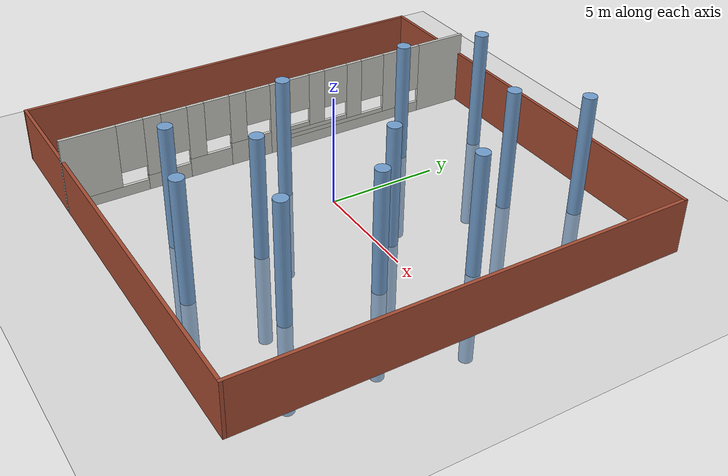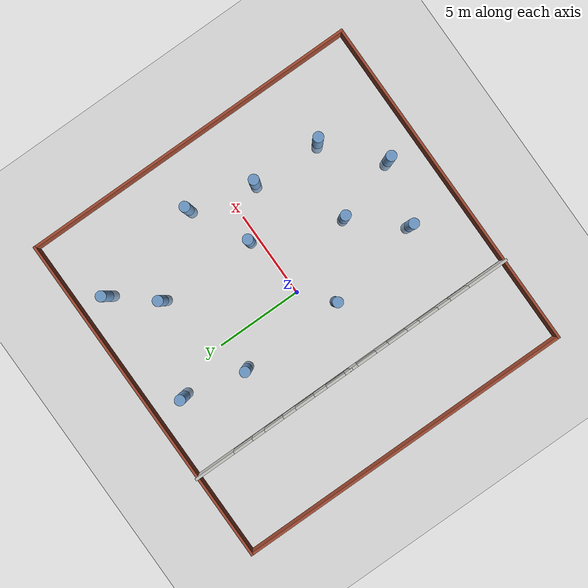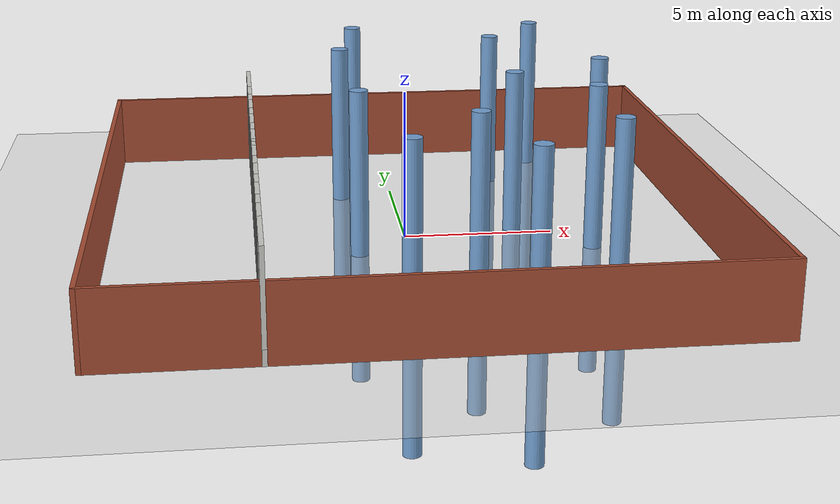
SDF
<sdf version="1.6">
 <world name="ego_swarm_8">
  <plugin name="gz::sim::systems::Physics" filename="gz-sim-physics-system"/>
  <plugin name="gz::sim::systems::UserCommands" filename="gz-sim-user-commands-system"/>
  <plugin name="gz::sim::systems::SceneBroadcaster" filename="gz-sim-scene-broadcaster-system"/>
  <plugin name="gz::sim::systems::Contact" filename="gz-sim-contact-system"/>
  <plugin name="gz::sim::systems::Imu" filename="gz-sim-imu-system"/>
  <plugin name="gz::sim::systems::AirPressure" filename="gz-sim-air-pressure-system"/>
  <plugin name="gz::sim::systems::ApplyLinkWrench" filename="gz-sim-apply-link-wrench-system"/>
  <plugin name="gz::sim::systems::NavSat" filename="gz-sim-navsat-system"/>
  <plugin name="gz::sim::systems::Sensors" filename="gz-sim-sensors-system">
   <render_engine>ogre2</render_engine>
  </plugin>
  <light name="sun" type="directional">
   <pose>0 0 10 0 -0 0</pose>
   <diffuse>0.8 0.8 0.8 1</diffuse>
   <specular>0.2 0.2 0.2 1</specular>
   <attenuation>
    <range>1000</range>
    <constant>0.9</constant>
    <linear>0.01</linear>
    <quadratic>0.001</quadratic>
   </attenuation>
   <direction>-0.5 0.1 -0.9</direction>
  </light>
  <model name="ground_plane">
   <static>1</static>
   <link name="link">
    <collision name="collision">
     <geometry><plane><normal>0 0 1</normal><size>100 100</size></plane></geometry>
     <surface><friction><ode><mu>100</mu><mu2>50</mu2></ode></friction></surface>
    </collision>
    <visual name="visual">
     <cast_shadows>0</cast_shadows>
     <geometry><plane><normal>0 0 1</normal><size>100 100</size></plane></geometry>
     <material>
      <script><uri>file://media/materials/scripts/gazebo.material</uri><name>Gazebo/Grey</name></script>
     </material>
    </visual>
   </link>
  </model>
  <gravity>0 0 -9.8</gravity>
  <magnetic_field>6e-06 2.3e-05 -4.2e-05</magnetic_field>
  <atmosphere type="adiabatic"/>
  <physics name="default_physics" default="0" type="ode">
   <max_step_size>0.004</max_step_size>
   <real_time_factor>1</real_time_factor>
   <real_time_update_rate>250</real_time_update_rate>
  </physics>
  <scene><ambient>0.4 0.4 0.4 1</ambient><background>0.7 0.7 0.7 1</background><shadows>1</shadows></scene>
  <spherical_coordinates>
   <surface_model>EARTH_WGS84</surface_model>
   <latitude_deg>0</latitude_deg>
   <longitude_deg>0</longitude_deg>
   <elevation>0</elevation>
   <heading_deg>0</heading_deg>
  </spherical_coordinates>
  <model name="Wall_left">
   <pose>-5 5 0 0 -0 0</pose>
   <link name="Wall_0">
    <pose>0 -0 0 0 -0 -1.5708</pose>
    <visual name="Wall_0_Visual_0">
     <pose>-3.8375 0 1.75 0 -0 0</pose>
     <geometry><box><size>2.475 0.15 3.5</size></box></geometry>
     <material>
      <script><uri>file://media/materials/scripts/gazebo.material</uri><name>Gazebo/CeilingTiled</name></script>
      <ambient>0.760784 0.662745 0.627451 1</ambient>
     </material>
     <meta><layer>0</layer></meta>
    </visual>
    <collision name="Wall_0_Collision_0">
     <geometry><box><size>2.475 0.15 3.5</size></box></geometry>
     <pose>-3.8375 0 1.75 0 -0 0</pose>
    </collision>
    <visual name="Wall_0_Visual_1">
     <pose>1.2375 0 0.25 0 -0 0</pose>
     <geometry><box><size>7.675 0.15 0.5</size></box></geometry>
     <material>
      <script><uri>file://media/materials/scripts/gazebo.material</uri><name>Gazebo/CeilingTiled</name></script>
      <ambient>0.760784 0.662745 0.627451 1</ambient>
     </material>
     <meta><layer>0</layer></meta>
    </visual>
    <collision name="Wall_0_Collision_1">
     <geometry><box><size>7.675 0.15 0.5</size></box></geometry>
     <pose>1.2375 0 0.25 0 -0 0</pose>
    </collision>
    <visual name="Wall_0_Visual_2">
     <pose>-1 0 2 0 -0 0</pose>
     <geometry><box><size>0.8 0.15 3</size></box></geometry>
     <material>
      <script><uri>file://media/materials/scripts/gazebo.material</uri><name>Gazebo/CeilingTiled</name></script>
      <ambient>0.760784 0.662745 0.627451 1</ambient>
     </material>
     <meta><layer>0</layer></meta>
    </visual>
    <collision name="Wall_0_Collision_2">
     <geometry><box><size>0.8 0.15 3</size></box></geometry>
     <pose>-1 0 2 0 -0 0</pose>
    </collision>
    <visual name="Wall_0_Visual_3">
     <pose>2.2375 0 0.6 0 -0 0</pose>
     <geometry><box><size>5.675 0.15 0.2</size></box></geometry>
     <material>
      <script><uri>file://media/materials/scripts/gazebo.material</uri><name>Gazebo/CeilingTiled</name></script>
      <ambient>0.760784 0.662745 0.627451 1</ambient>
     </material>
     <meta><layer>0</layer></meta>
    </visual>
    <collision name="Wall_0_Collision_3">
     <geometry><box><size>5.675 0.15 0.2</size></box></geometry>
     <pose>2.2375 0 0.6 0 -0 0</pose>
    </collision>
    <visual name="Wall_0_Visual_4">
     <pose>1 0 2.1 0 -0 0</pose>
     <geometry><box><size>0.8 0.15 2.8</size></box></geometry>
     <material>
      <script><uri>file://media/materials/scripts/gazebo.material</uri><name>Gazebo/CeilingTiled</name></script>
      <ambient>0.760784 0.662745 0.627451 1</ambient>
     </material>
     <meta><layer>0</layer></meta>
    </visual>
    <collision name="Wall_0_Collision_4">
     <geometry><box><size>0.8 0.15 2.8</size></box></geometry>
     <pose>1 0 2.1 0 -0 0</pose>
    </collision>
    <visual name="Wall_0_Visual_5">
     <pose>3.2375 0 0.8 0 -0 0</pose>
     <geometry><box><size>3.675 0.15 0.2</size></box></geometry>
     <material>
      <script><uri>file://media/materials/scripts/gazebo.material</uri><name>Gazebo/CeilingTiled</name></script>
      <ambient>0.760784 0.662745 0.627451 1</ambient>
     </material>
     <meta><layer>0</layer></meta>
    </visual>
    <collision name="Wall_0_Collision_5">
     <geometry><box><size>3.675 0.15 0.2</size></box></geometry>
     <pose>3.2375 0 0.8 0 -0 0</pose>
    </collision>
    <visual name="Wall_0_Visual_6">
     <pose>3 0 2.2 0 -0 0</pose>
     <geometry><box><size>0.8 0.15 2.6</size></box></geometry>
     <material>
      <script><uri>file://media/materials/scripts/gazebo.material</uri><name>Gazebo/CeilingTiled</name></script>
      <ambient>0.760784 0.662745 0.627451 1</ambient>
     </material>
     <meta><layer>0</layer></meta>
    </visual>
    <collision name="Wall_0_Collision_6">
     <geometry><box><size>0.8 0.15 2.6</size></box></geometry>
     <pose>3 0 2.2 0 -0 0</pose>
    </collision>
    <visual name="Wall_0_Visual_7">
     <pose>4.2375 0 1 0 -0 0</pose>
     <geometry><box><size>1.675 0.15 0.2</size></box></geometry>
     <material>
      <script><uri>file://media/materials/scripts/gazebo.material</uri><name>Gazebo/CeilingTiled</name></script>
      <ambient>0.760784 0.662745 0.627451 1</ambient>
     </material>
     <meta><layer>0</layer></meta>
    </visual>
    <collision name="Wall_0_Collision_7">
     <geometry><box><size>1.675 0.15 0.2</size></box></geometry>
     <pose>4.2375 0 1 0 -0 0</pose>
    </collision>
    <visual name="Wall_0_Visual_8">
     <pose>4.8375 0 2.3 0 -0 0</pose>
     <geometry><box><size>0.475 0.15 2.4</size></box></geometry>
     <material>
      <script><uri>file://media/materials/scripts/gazebo.material</uri><name>Gazebo/CeilingTiled</name></script>
      <ambient>0.760784 0.662745 0.627451 1</ambient>
     </material>
     <meta><layer>0</layer></meta>
    </visual>
    <collision name="Wall_0_Collision_8">
     <geometry><box><size>0.475 0.15 2.4</size></box></geometry>
     <pose>4.8375 0 2.3 0 -0 0</pose>
    </collision>
    <visual name="Wall_0_Visual_9">
     <pose>-2 0 2.35 0 -0 0</pose>
     <geometry><box><size>1.2 0.15 2.3</size></box></geometry>
     <material>
      <script><uri>file://media/materials/scripts/gazebo.material</uri><name>Gazebo/CeilingTiled</name></script>
      <ambient>0.760784 0.662745 0.627451 1</ambient>
     </material>
     <meta><layer>0</layer></meta>
    </visual>
    <collision name="Wall_0_Collision_9">
     <geometry><box><size>1.2 0.15 2.3</size></box></geometry>
     <pose>-2 0 2.35 0 -0 0</pose>
    </collision>
    <visual name="Wall_0_Visual_10">
     <pose>0 0 2.45 0 -0 0</pose>
     <geometry><box><size>1.2 0.15 2.1</size></box></geometry>
     <material>
      <script><uri>file://media/materials/scripts/gazebo.material</uri><name>Gazebo/CeilingTiled</name></script>
      <ambient>0.760784 0.662745 0.627451 1</ambient>
     </material>
     <meta><layer>0</layer></meta>
    </visual>
    <collision name="Wall_0_Collision_10">
     <geometry><box><size>1.2 0.15 2.1</size></box></geometry>
     <pose>0 0 2.45 0 -0 0</pose>
    </collision>
    <visual name="Wall_0_Visual_11">
     <pose>2 0 2.55 0 -0 0</pose>
     <geometry><box><size>1.2 0.15 1.9</size></box></geometry>
     <material>
      <script><uri>file://media/materials/scripts/gazebo.material</uri><name>Gazebo/CeilingTiled</name></script>
      <ambient>0.760784 0.662745 0.627451 1</ambient>
     </material>
     <meta><layer>0</layer></meta>
    </visual>
    <collision name="Wall_0_Collision_11">
     <geometry><box><size>1.2 0.15 1.9</size></box></geometry>
     <pose>2 0 2.55 0 -0 0</pose>
    </collision>
    <visual name="Wall_0_Visual_12">
     <pose>4 0 2.65 0 -0 0</pose>
     <geometry><box><size>1.2 0.15 1.7</size></box></geometry>
     <material>
      <script><uri>file://media/materials/scripts/gazebo.material</uri><name>Gazebo/CeilingTiled</name></script>
      <ambient>0.760784 0.662745 0.627451 1</ambient>
     </material>
     <meta><layer>0</layer></meta>
    </visual>
    <collision name="Wall_0_Collision_12">
     <geometry><box><size>1.2 0.15 1.7</size></box></geometry>
     <pose>4 0 2.65 0 -0 0</pose>
    </collision>
   </link>
   <static>1</static>
  </model>
  <model name="Wall_right">
   <pose>-5 -5 0 0 -0 0</pose>
   <link name="Wall_2">
    <pose>0 0 0 0 -0 -1.5708</pose>
    <visual name="Wall_2_Visual_0">
     <pose>-4.8375 0 1.75 0 -0 0</pose>
     <geometry><box><size>0.475 0.15 3.5</size></box></geometry>
     <material>
      <script><uri>file://media/materials/scripts/gazebo.material</uri><name>Gazebo/CeilingTiled</name></script>
      <ambient>0.760784 0.662745 0.627451 1</ambient>
     </material>
     <meta><layer>0</layer></meta>
    </visual>
    <collision name="Wall_2_Collision_0">
     <geometry><box><size>0.475 0.15 3.5</size></box></geometry>
     <pose>-4.8375 0 1.75 0 -0 0</pose>
    </collision>
    <visual name="Wall_2_Visual_1">
     <pose>-3.6 0 0.55 0 -0 0</pose>
     <geometry><box><size>2 0.15 1.1</size></box></geometry>
     <material>
      <script><uri>file://media/materials/scripts/gazebo.material</uri><name>Gazebo/CeilingTiled</name></script>
      <ambient>0.760784 0.662745 0.627451 1</ambient>
     </material>
     <meta><layer>0</layer></meta>
    </visual>
    <collision name="Wall_2_Collision_1">
     <geometry><box><size>2 0.15 1.1</size></box></geometry>
     <pose>-3.6 0 0.55 0 -0 0</pose>
    </collision>
    <visual name="Wall_2_Visual_2">
     <pose>-1.6 0 0.45 0 -0 0</pose>
     <geometry><box><size>2 0.15 0.9</size></box></geometry>
     <material>
      <script><uri>file://media/materials/scripts/gazebo.material</uri><name>Gazebo/CeilingTiled</name></script>
      <ambient>0.760784 0.662745 0.627451 1</ambient>
     </material>
     <meta><layer>0</layer></meta>
    </visual>
    <collision name="Wall_2_Collision_2">
     <geometry><box><size>2 0.15 0.9</size></box></geometry>
     <pose>-1.6 0 0.45 0 -0 0</pose>
    </collision>
    <visual name="Wall_2_Visual_3">
     <pose>0.4 0 0.35 0 -0 0</pose>
     <geometry><box><size>2 0.15 0.7</size></box></geometry>
     <material>
      <script><uri>file://media/materials/scripts/gazebo.material</uri><name>Gazebo/CeilingTiled</name></script>
      <ambient>0.760784 0.662745 0.627451 1</ambient>
     </material>
     <meta><layer>0</layer></meta>
    </visual>
    <collision name="Wall_2_Collision_3">
     <geometry><box><size>2 0.15 0.7</size></box></geometry>
     <pose>0.4 0 0.35 0 -0 0</pose>
    </collision>
    <visual name="Wall_2_Visual_4">
     <pose>3.2375 0 0.25 0 -0 0</pose>
     <geometry><box><size>3.675 0.15 0.5</size></box></geometry>
     <material>
      <script><uri>file://media/materials/scripts/gazebo.material</uri><name>Gazebo/CeilingTiled</name></script>
      <ambient>0.760784 0.662745 0.627451 1</ambient>
     </material>
     <meta><layer>0</layer></meta>
    </visual>
    <collision name="Wall_2_Collision_4">
     <geometry><box><size>3.675 0.15 0.5</size></box></geometry>
     <pose>3.2375 0 0.25 0 -0 0</pose>
    </collision>
    <visual name="Wall_2_Visual_5">
     <pose>3.8375 0 2 0 -0 0</pose>
     <geometry><box><size>2.475 0.15 3</size></box></geometry>
     <material>
      <script><uri>file://media/materials/scripts/gazebo.material</uri><name>Gazebo/CeilingTiled</name></script>
      <ambient>0.760784 0.662745 0.627451 1</ambient>
     </material>
     <meta><layer>0</layer></meta>
    </visual>
    <collision name="Wall_2_Collision_5">
     <geometry><box><size>2.475 0.15 3</size></box></geometry>
     <pose>3.8375 0 2 0 -0 0</pose>
    </collision>
    <visual name="Wall_2_Visual_6">
     <pose>1 0 2.1 0 -0 0</pose>
     <geometry><box><size>0.8 0.15 2.8</size></box></geometry>
     <material>
      <script><uri>file://media/materials/scripts/gazebo.material</uri><name>Gazebo/CeilingTiled</name></script>
      <ambient>0.760784 0.662745 0.627451 1</ambient>
     </material>
     <meta><layer>0</layer></meta>
    </visual>
    <collision name="Wall_2_Collision_6">
     <geometry><box><size>0.8 0.15 2.8</size></box></geometry>
     <pose>1 0 2.1 0 -0 0</pose>
    </collision>
    <visual name="Wall_2_Visual_7">
     <pose>-1 0 2.2 0 -0 0</pose>
     <geometry><box><size>0.8 0.15 2.6</size></box></geometry>
     <material>
      <script><uri>file://media/materials/scripts/gazebo.material</uri><name>Gazebo/CeilingTiled</name></script>
      <ambient>0.760784 0.662745 0.627451 1</ambient>
     </material>
     <meta><layer>0</layer></meta>
    </visual>
    <collision name="Wall_2_Collision_7">
     <geometry><box><size>0.8 0.15 2.6</size></box></geometry>
     <pose>-1 0 2.2 0 -0 0</pose>
    </collision>
    <visual name="Wall_2_Visual_8">
     <pose>-3 0 2.3 0 -0 0</pose>
     <geometry><box><size>0.8 0.15 2.4</size></box></geometry>
     <material>
      <script><uri>file://media/materials/scripts/gazebo.material</uri><name>Gazebo/CeilingTiled</name></script>
      <ambient>0.760784 0.662745 0.627451 1</ambient>
     </material>
     <meta><layer>0</layer></meta>
    </visual>
    <collision name="Wall_2_Collision_8">
     <geometry><box><size>0.8 0.15 2.4</size></box></geometry>
     <pose>-3 0 2.3 0 -0 0</pose>
    </collision>
    <visual name="Wall_2_Visual_9">
     <pose>2 0 2.35 0 -0 0</pose>
     <geometry><box><size>1.2 0.15 2.3</size></box></geometry>
     <material>
      <script><uri>file://media/materials/scripts/gazebo.material</uri><name>Gazebo/CeilingTiled</name></script>
      <ambient>0.760784 0.662745 0.627451 1</ambient>
     </material>
     <meta><layer>0</layer></meta>
    </visual>
    <collision name="Wall_2_Collision_9">
     <geometry><box><size>1.2 0.15 2.3</size></box></geometry>
     <pose>2 0 2.35 0 -0 0</pose>
    </collision>
    <visual name="Wall_2_Visual_10">
     <pose>0 0 2.45 0 -0 0</pose>
     <geometry><box><size>1.2 0.15 2.1</size></box></geometry>
     <material>
      <script><uri>file://media/materials/scripts/gazebo.material</uri><name>Gazebo/CeilingTiled</name></script>
      <ambient>0.760784 0.662745 0.627451 1</ambient>
     </material>
     <meta><layer>0</layer></meta>
    </visual>
    <collision name="Wall_2_Collision_10">
     <geometry><box><size>1.2 0.15 2.1</size></box></geometry>
     <pose>0 0 2.45 0 -0 0</pose>
    </collision>
    <visual name="Wall_2_Visual_11">
     <pose>-2 0 2.55 0 -0 0</pose>
     <geometry><box><size>1.2 0.15 1.9</size></box></geometry>
     <material>
      <script><uri>file://media/materials/scripts/gazebo.material</uri><name>Gazebo/CeilingTiled</name></script>
      <ambient>0.760784 0.662745 0.627451 1</ambient>
     </material>
     <meta><layer>0</layer></meta>
    </visual>
    <collision name="Wall_2_Collision_11">
     <geometry><box><size>1.2 0.15 1.9</size></box></geometry>
     <pose>-2 0 2.55 0 -0 0</pose>
    </collision>
    <visual name="Wall_2_Visual_12">
     <pose>-4 0 2.65 0 -0 0</pose>
     <geometry><box><size>1.2 0.15 1.7</size></box></geometry>
     <material>
      <script><uri>file://media/materials/scripts/gazebo.material</uri><name>Gazebo/CeilingTiled</name></script>
      <ambient>0.760784 0.662745 0.627451 1</ambient>
     </material>
     <meta><layer>0</layer></meta>
    </visual>
    <collision name="Wall_2_Collision_12">
     <geometry><box><size>1.2 0.15 1.7</size></box></geometry>
     <pose>-4 0 2.65 0 -0 0</pose>
    </collision>
   </link>
   <static>1</static>
  </model>
  <model name="blank">
   <link name="Wall_0">
    <collision name="Wall_0_Collision">
     <geometry><box><size>20.15 0.15 2.5</size></box></geometry>
     <pose>0 0 1.25 0 -0 0</pose>
    </collision>
    <visual name="Wall_0_Visual">
     <pose>0 0 1.25 0 -0 0</pose>
     <geometry><box><size>20.15 0.15 2.5</size></box></geometry>
     <material>
      <script><uri>file://media/materials/scripts/gazebo.material</uri><name>Gazebo/Bricks</name></script>
      <ambient>1 1 1 1</ambient>
     </material>
     <meta><layer>0</layer></meta>
    </visual>
    <pose>0 10 0 0 -0 0</pose>
   </link>
   <link name="Wall_1">
    <collision name="Wall_1_Collision">
     <geometry><box><size>20.15 0.15 2.5</size></box></geometry>
     <pose>0 0 1.25 0 -0 0</pose>
    </collision>
    <visual name="Wall_1_Visual">
     <pose>0 0 1.25 0 -0 0</pose>
     <geometry><box><size>20.15 0.15 2.5</size></box></geometry>
     <material>
      <script><uri>file://media/materials/scripts/gazebo.material</uri><name>Gazebo/Bricks</name></script>
      <ambient>1 1 1 1</ambient>
     </material>
     <meta><layer>0</layer></meta>
    </visual>
    <pose>10 0 0 0 -0 -1.5708</pose>
   </link>
   <link name="Wall_2">
    <collision name="Wall_2_Collision">
     <geometry><box><size>20.15 0.15 2.5</size></box></geometry>
     <pose>0 0 1.25 0 -0 0</pose>
    </collision>
    <visual name="Wall_2_Visual">
     <pose>0 0 1.25 0 -0 0</pose>
     <geometry><box><size>20.15 0.15 2.5</size></box></geometry>
     <material>
      <script><uri>file://media/materials/scripts/gazebo.material</uri><name>Gazebo/Bricks</name></script>
      <ambient>1 1 1 1</ambient>
     </material>
     <meta><layer>0</layer></meta>
    </visual>
    <pose>0 -10 0 0 -0 3.14159</pose>
   </link>
   <link name="Wall_3">
    <collision name="Wall_3_Collision">
     <geometry><box><size>20.15 0.15 2.5</size></box></geometry>
     <pose>0 0 1.25 0 -0 0</pose>
    </collision>
    <visual name="Wall_3_Visual">
     <pose>0 0 1.25 0 -0 0</pose>
     <geometry><box><size>20.15 0.15 2.5</size></box></geometry>
     <material>
      <script><uri>file://media/materials/scripts/gazebo.material</uri><name>Gazebo/Bricks</name></script>
      <ambient>1 1 1 1</ambient>
     </material>
     <meta><layer>0</layer></meta>
    </visual>
    <pose>-10 0 0 0 -0 1.5708</pose>
   </link>
   <static>1</static>
  </model>
  <model name="unit_cylinder_0">
   <link name="link">
    <inertial>
     <mass>1</mass>
     <inertia><ixx>0.145833</ixx><ixy>0</ixy><ixz>0</ixz><iyy>0.145833</iyy><iyz>0</iyz><izz>0.125</izz></inertia>
    </inertial>
    <pose>0 0 3 0 -0 0</pose>
    <visual name="visual">
     <geometry><cylinder><radius>0.3</radius><length>10</length></cylinder></geometry>
     <material>
      <script><name>Gazebo/Grey</name><uri>file://media/materials/scripts/gazebo.material</uri></script>
      <shader type="pixel"><normal_map>__default__</normal_map></shader>
      <ambient>0.447 0.624 0.812 1</ambient>
      <diffuse>0.7 0.7 0.7 1</diffuse>
      <specular>0.01 0.01 0.01 1</specular>
      <emissive>0 0 0 1</emissive>
     </material>
    </visual>
    <collision name="collision">
     <geometry><cylinder><radius>0.5</radius><length>1</length></cylinder></geometry>
     <surface>
      <friction>
       <ode><mu>1</mu><mu2>1</mu2><fdir1>0 0 0</fdir1><slip1>0</slip1><slip2>0</slip2></ode>
       <torsional>
        <coefficient>1</coefficient>
        <patch_radius>0</patch_radius>
        <surface_radius>0</surface_radius>
        <use_patch_radius>1</use_patch_radius>
        <ode><slip>0</slip></ode>
       </torsional>
      </friction>
      <bounce><restitution_coefficient>0</restitution_coefficient><threshold>1e+06</threshold></bounce>
      <contact>
       <collide_without_contact>0</collide_without_contact>
       <collide_without_contact_bitmask>1</collide_without_contact_bitmask>
       <collide_bitmask>1</collide_bitmask>
       <ode>
        <soft_cfm>0</soft_cfm>
        <soft_erp>0.2</soft_erp>
        <kp>1e+13</kp>
        <kd>1</kd>
        <max_vel>0.01</max_vel>
        <min_depth>0</min_depth>
       </ode>
       <bullet>
        <split_impulse>1</split_impulse>
        <split_impulse_penetration_threshold>-0.01</split_impulse_penetration_threshold>
        <soft_cfm>0</soft_cfm>
        <soft_erp>0.2</soft_erp>
        <kp>1e+13</kp>
        <kd>1</kd>
       </bullet>
      </contact>
     </surface>
    </collision>
   </link>
   <static>0</static>
   <pose>3.81932 6.15626 -2.5 0 -0 0</pose>
  </model>
  <model name="unit_cylinder_0_0">
   <link name="link">
    <inertial>
     <mass>1</mass>
     <inertia><ixx>0.145833</ixx><ixy>0</ixy><ixz>0</ixz><iyy>0.145833</iyy><iyz>0</iyz><izz>0.125</izz></inertia>
    </inertial>
    <pose>0 0 3 0 -0 0</pose>
    <visual name="visual">
     <geometry><cylinder><radius>0.3</radius><length>10</length></cylinder></geometry>
     <material>
      <script><name>Gazebo/Grey</name><uri>file://media/materials/scripts/gazebo.material</uri></script>
      <shader type="pixel"><normal_map>__default__</normal_map></shader>
      <ambient>0.447 0.624 0.812 1</ambient>
      <diffuse>0.7 0.7 0.7 1</diffuse>
      <specular>0.01 0.01 0.01 1</specular>
      <emissive>0 0 0 1</emissive>
     </material>
    </visual>
    <collision name="collision">
     <geometry><cylinder><radius>0.5</radius><length>1</length></cylinder></geometry>
     <surface>
      <friction>
       <ode><mu>1</mu><mu2>1</mu2><fdir1>0 0 0</fdir1><slip1>0</slip1><slip2>0</slip2></ode>
       <torsional>
        <coefficient>1</coefficient>
        <patch_radius>0</patch_radius>
        <surface_radius>0</surface_radius>
        <use_patch_radius>1</use_patch_radius>
        <ode><slip>0</slip></ode>
       </torsional>
      </friction>
      <bounce><restitution_coefficient>0</restitution_coefficient><threshold>1e+06</threshold></bounce>
      <contact>
       <collide_without_contact>0</collide_without_contact>
       <collide_without_contact_bitmask>1</collide_without_contact_bitmask>
       <collide_bitmask>1</collide_bitmask>
       <ode>
        <soft_cfm>0</soft_cfm>
        <soft_erp>0.2</soft_erp>
        <kp>1e+13</kp>
        <kd>1</kd>
        <max_vel>0.01</max_vel>
        <min_depth>0</min_depth>
       </ode>
       <bullet>
        <split_impulse>1</split_impulse>
        <split_impulse_penetration_threshold>-0.01</split_impulse_penetration_threshold>
        <soft_cfm>0</soft_cfm>
        <soft_erp>0.2</soft_erp>
        <kp>1e+13</kp>
        <kd>1</kd>
       </bullet>
      </contact>
     </surface>
    </collision>
   </link>
   <static>0</static>
   <pose>-1.07012 8.20318 -2.5 0 -0 0</pose>
  </model>
  <model name="unit_cylinder_0_2">
   <link name="link">
    <inertial>
     <mass>1</mass>
     <inertia><ixx>0.145833</ixx><ixy>0</ixy><ixz>0</ixz><iyy>0.145833</iyy><iyz>0</iyz><izz>0.125</izz></inertia>
    </inertial>
    <pose>0 0 3 0 -0 0</pose>
    <visual name="visual">
     <geometry><cylinder><radius>0.3</radius><length>10</length></cylinder></geometry>
     <material>
      <script><name>Gazebo/Grey</name><uri>file://media/materials/scripts/gazebo.material</uri></script>
      <shader type="pixel"><normal_map>__default__</normal_map></shader>
      <ambient>0.447 0.624 0.812 1</ambient>
      <diffuse>0.7 0.7 0.7 1</diffuse>
      <specular>0.01 0.01 0.01 1</specular>
      <emissive>0 0 0 1</emissive>
     </material>
    </visual>
    <collision name="collision">
     <geometry><cylinder><radius>0.5</radius><length>1</length></cylinder></geometry>
     <surface>
      <friction>
       <ode><mu>1</mu><mu2>1</mu2><fdir1>0 0 0</fdir1><slip1>0</slip1><slip2>0</slip2></ode>
       <torsional>
        <coefficient>1</coefficient>
        <patch_radius>0</patch_radius>
        <surface_radius>0</surface_radius>
        <use_patch_radius>1</use_patch_radius>
        <ode><slip>0</slip></ode>
       </torsional>
      </friction>
      <bounce><restitution_coefficient>0</restitution_coefficient><threshold>1e+06</threshold></bounce>
      <contact>
       <collide_without_contact>0</collide_without_contact>
       <collide_without_contact_bitmask>1</collide_without_contact_bitmask>
       <collide_bitmask>1</collide_bitmask>
       <ode>
        <soft_cfm>0</soft_cfm>
        <soft_erp>0.2</soft_erp>
        <kp>1e+13</kp>
        <kd>1</kd>
        <max_vel>0.01</max_vel>
        <min_depth>0</min_depth>
       </ode>
       <bullet>
        <split_impulse>1</split_impulse>
        <split_impulse_penetration_threshold>-0.01</split_impulse_penetration_threshold>
        <soft_cfm>0</soft_cfm>
        <soft_erp>0.2</soft_erp>
        <kp>1e+13</kp>
        <kd>1</kd>
       </bullet>
      </contact>
     </surface>
    </collision>
   </link>
   <static>0</static>
   <pose>5.72873 8.43511 -2.5 0 -0 0</pose>
  </model>
  <model name="unit_cylinder_0_4">
   <link name="link">
    <inertial>
     <mass>1</mass>
     <inertia><ixx>0.145833</ixx><ixy>0</ixy><ixz>0</ixz><iyy>0.145833</iyy><iyz>0</iyz><izz>0.125</izz></inertia>
    </inertial>
    <pose>0 0 3 0 -0 0</pose>
    <visual name="visual">
     <geometry><cylinder><radius>0.3</radius><length>10</length></cylinder></geometry>
     <material>
      <script><name>Gazebo/Grey</name><uri>file://media/materials/scripts/gazebo.material</uri></script>
      <shader type="pixel"><normal_map>__default__</normal_map></shader>
      <ambient>0.447 0.624 0.812 1</ambient>
      <diffuse>0.7 0.7 0.7 1</diffuse>
      <specular>0.01 0.01 0.01 1</specular>
      <emissive>0 0 0 1</emissive>
     </material>
    </visual>
    <collision name="collision">
     <geometry><cylinder><radius>0.5</radius><length>1</length></cylinder></geometry>
     <surface>
      <friction>
       <ode><mu>1</mu><mu2>1</mu2><fdir1>0 0 0</fdir1><slip1>0</slip1><slip2>0</slip2></ode>
       <torsional>
        <coefficient>1</coefficient>
        <patch_radius>0</patch_radius>
        <surface_radius>0</surface_radius>
        <use_patch_radius>1</use_patch_radius>
        <ode><slip>0</slip></ode>
       </torsional>
      </friction>
      <bounce><restitution_coefficient>0</restitution_coefficient><threshold>1e+06</threshold></bounce>
      <contact>
       <collide_without_contact>0</collide_without_contact>
       <collide_without_contact_bitmask>1</collide_without_contact_bitmask>
       <collide_bitmask>1</collide_bitmask>
       <ode>
        <soft_cfm>0</soft_cfm>
        <soft_erp>0.2</soft_erp>
        <kp>1e+13</kp>
        <kd>1</kd>
        <max_vel>0.01</max_vel>
        <min_depth>0</min_depth>
       </ode>
       <bullet>
        <split_impulse>1</split_impulse>
        <split_impulse_penetration_threshold>-0.01</split_impulse_penetration_threshold>
        <soft_cfm>0</soft_cfm>
        <soft_erp>0.2</soft_erp>
        <kp>1e+13</kp>
        <kd>1</kd>
       </bullet>
      </contact>
     </surface>
    </collision>
   </link>
   <static>0</static>
   <pose>3.72627 0.485715 -2.50001 -0 -0 -0</pose>
  </model>
  <model name="unit_cylinder_0_5">
   <link name="link">
    <inertial>
     <mass>1</mass>
     <inertia><ixx>0.145833</ixx><ixy>0</ixy><ixz>0</ixz><iyy>0.145833</iyy><iyz>0</iyz><izz>0.125</izz></inertia>
    </inertial>
    <pose>0 0 3 0 -0 0</pose>
    <visual name="visual">
     <geometry><cylinder><radius>0.3</radius><length>10</length></cylinder></geometry>
     <material>
      <script><name>Gazebo/Grey</name><uri>file://media/materials/scripts/gazebo.material</uri></script>
      <shader type="pixel"><normal_map>__default__</normal_map></shader>
      <ambient>0.447 0.624 0.812 1</ambient>
      <diffuse>0.7 0.7 0.7 1</diffuse>
      <specular>0.01 0.01 0.01 1</specular>
      <emissive>0 0 0 1</emissive>
     </material>
    </visual>
    <collision name="collision">
     <geometry><cylinder><radius>0.5</radius><length>1</length></cylinder></geometry>
     <surface>
      <friction>
       <ode><mu>1</mu><mu2>1</mu2><fdir1>0 0 0</fdir1><slip1>0</slip1><slip2>0</slip2></ode>
       <torsional>
        <coefficient>1</coefficient>
        <patch_radius>0</patch_radius>
        <surface_radius>0</surface_radius>
        <use_patch_radius>1</use_patch_radius>
        <ode><slip>0</slip></ode>
       </torsional>
      </friction>
      <bounce><restitution_coefficient>0</restitution_coefficient><threshold>1e+06</threshold></bounce>
      <contact>
       <collide_without_contact>0</collide_without_contact>
       <collide_without_contact_bitmask>1</collide_without_contact_bitmask>
       <collide_bitmask>1</collide_bitmask>
       <ode>
        <soft_cfm>0</soft_cfm>
        <soft_erp>0.2</soft_erp>
        <kp>1e+13</kp>
        <kd>1</kd>
        <max_vel>0.01</max_vel>
        <min_depth>0</min_depth>
       </ode>
       <bullet>
        <split_impulse>1</split_impulse>
        <split_impulse_penetration_threshold>-0.01</split_impulse_penetration_threshold>
        <soft_cfm>0</soft_cfm>
        <soft_erp>0.2</soft_erp>
        <kp>1e+13</kp>
        <kd>1</kd>
       </bullet>
      </contact>
     </surface>
    </collision>
   </link>
   <static>0</static>
   <pose>6.08385 -1.56221 -2.50001 -0 -0 -0</pose>
  </model>
  <model name="unit_cylinder_0_6">
   <link name="link">
    <inertial>
     <mass>1</mass>
     <inertia><ixx>0.145833</ixx><ixy>0</ixy><ixz>0</ixz><iyy>0.145833</iyy><iyz>0</iyz><izz>0.125</izz></inertia>
    </inertial>
    <pose>0 0 3 0 -0 0</pose>
    <visual name="visual">
     <geometry><cylinder><radius>0.3</radius><length>10</length></cylinder></geometry>
     <material>
      <script><name>Gazebo/Grey</name><uri>file://media/materials/scripts/gazebo.material</uri></script>
      <shader type="pixel"><normal_map>__default__</normal_map></shader>
      <ambient>0.447 0.624 0.812 1</ambient>
      <diffuse>0.7 0.7 0.7 1</diffuse>
      <specular>0.01 0.01 0.01 1</specular>
      <emissive>0 0 0 1</emissive>
     </material>
    </visual>
    <collision name="collision">
     <geometry><cylinder><radius>0.5</radius><length>1</length></cylinder></geometry>
     <surface>
      <friction>
       <ode><mu>1</mu><mu2>1</mu2><fdir1>0 0 0</fdir1><slip1>0</slip1><slip2>0</slip2></ode>
       <torsional>
        <coefficient>1</coefficient>
        <patch_radius>0</patch_radius>
        <surface_radius>0</surface_radius>
        <use_patch_radius>1</use_patch_radius>
        <ode><slip>0</slip></ode>
       </torsional>
      </friction>
      <bounce><restitution_coefficient>0</restitution_coefficient><threshold>1e+06</threshold></bounce>
      <contact>
       <collide_without_contact>0</collide_without_contact>
       <collide_without_contact_bitmask>1</collide_without_contact_bitmask>
       <collide_bitmask>1</collide_bitmask>
       <ode>
        <soft_cfm>0</soft_cfm>
        <soft_erp>0.2</soft_erp>
        <kp>1e+13</kp>
        <kd>1</kd>
        <max_vel>0.01</max_vel>
        <min_depth>0</min_depth>
       </ode>
       <bullet>
        <split_impulse>1</split_impulse>
        <split_impulse_penetration_threshold>-0.01</split_impulse_penetration_threshold>
        <soft_cfm>0</soft_cfm>
        <soft_erp>0.2</soft_erp>
        <kp>1e+13</kp>
        <kd>1</kd>
       </bullet>
      </contact>
     </surface>
    </collision>
   </link>
   <static>0</static>
   <pose>5.94417 -5.58915 -2.50001 -0 -0 -0</pose>
  </model>
  <model name="unit_cylinder_0_7">
   <link name="link">
    <inertial>
     <mass>1</mass>
     <inertia><ixx>0.145833</ixx><ixy>0</ixy><ixz>0</ixz><iyy>0.145833</iyy><iyz>0</iyz><izz>0.125</izz></inertia>
    </inertial>
    <pose>0 0 3 0 -0 0</pose>
    <visual name="visual">
     <geometry><cylinder><radius>0.3</radius><length>10</length></cylinder></geometry>
     <material>
      <script><name>Gazebo/Grey</name><uri>file://media/materials/scripts/gazebo.material</uri></script>
      <shader type="pixel"><normal_map>__default__</normal_map></shader>
      <ambient>0.447 0.624 0.812 1</ambient>
      <diffuse>0.7 0.7 0.7 1</diffuse>
      <specular>0.01 0.01 0.01 1</specular>
      <emissive>0 0 0 1</emissive>
     </material>
    </visual>
    <collision name="collision">
     <geometry><cylinder><radius>0.5</radius><length>1</length></cylinder></geometry>
     <surface>
      <friction>
       <ode><mu>1</mu><mu2>1</mu2><fdir1>0 0 0</fdir1><slip1>0</slip1><slip2>0</slip2></ode>
       <torsional>
        <coefficient>1</coefficient>
        <patch_radius>0</patch_radius>
        <surface_radius>0</surface_radius>
        <use_patch_radius>1</use_patch_radius>
        <ode><slip>0</slip></ode>
       </torsional>
      </friction>
      <bounce><restitution_coefficient>0</restitution_coefficient><threshold>1e+06</threshold></bounce>
      <contact>
       <collide_without_contact>0</collide_without_contact>
       <collide_without_contact_bitmask>1</collide_without_contact_bitmask>
       <collide_bitmask>1</collide_bitmask>
       <ode>
        <soft_cfm>0</soft_cfm>
        <soft_erp>0.2</soft_erp>
        <kp>1e+13</kp>
        <kd>1</kd>
        <max_vel>0.01</max_vel>
        <min_depth>0</min_depth>
       </ode>
       <bullet>
        <split_impulse>1</split_impulse>
        <split_impulse_penetration_threshold>-0.01</split_impulse_penetration_threshold>
        <soft_cfm>0</soft_cfm>
        <soft_erp>0.2</soft_erp>
        <kp>1e+13</kp>
        <kd>1</kd>
       </bullet>
      </contact>
     </surface>
    </collision>
   </link>
   <static>0</static>
   <pose>7.01591 2.18541 -2.5 0 -0 0</pose>
  </model>
  <model name="unit_cylinder_0_8">
   <link name="link">
    <inertial>
     <mass>1</mass>
     <inertia><ixx>0.145833</ixx><ixy>0</ixy><ixz>0</ixz><iyy>0.145833</iyy><iyz>0</iyz><izz>0.125</izz></inertia>
    </inertial>
    <pose>0 0 3 0 -0 0</pose>
    <visual name="visual">
     <geometry><cylinder><radius>0.3</radius><length>10</length></cylinder></geometry>
     <material>
      <script><name>Gazebo/Grey</name><uri>file://media/materials/scripts/gazebo.material</uri></script>
      <shader type="pixel"><normal_map>__default__</normal_map></shader>
      <ambient>0.447 0.624 0.812 1</ambient>
      <diffuse>0.7 0.7 0.7 1</diffuse>
      <specular>0.01 0.01 0.01 1</specular>
      <emissive>0 0 0 1</emissive>
     </material>
    </visual>
    <collision name="collision">
     <geometry><cylinder><radius>0.5</radius><length>1</length></cylinder></geometry>
     <surface>
      <friction>
       <ode><mu>1</mu><mu2>1</mu2><fdir1>0 0 0</fdir1><slip1>0</slip1><slip2>0</slip2></ode>
       <torsional>
        <coefficient>1</coefficient>
        <patch_radius>0</patch_radius>
        <surface_radius>0</surface_radius>
        <use_patch_radius>1</use_patch_radius>
        <ode><slip>0</slip></ode>
       </torsional>
      </friction>
      <bounce><restitution_coefficient>0</restitution_coefficient><threshold>1e+06</threshold></bounce>
      <contact>
       <collide_without_contact>0</collide_without_contact>
       <collide_without_contact_bitmask>1</collide_without_contact_bitmask>
       <collide_bitmask>1</collide_bitmask>
       <ode>
        <soft_cfm>0</soft_cfm>
        <soft_erp>0.2</soft_erp>
        <kp>1e+13</kp>
        <kd>1</kd>
        <max_vel>0.01</max_vel>
        <min_depth>0</min_depth>
       </ode>
       <bullet>
        <split_impulse>1</split_impulse>
        <split_impulse_penetration_threshold>-0.01</split_impulse_penetration_threshold>
        <soft_cfm>0</soft_cfm>
        <soft_erp>0.2</soft_erp>
        <kp>1e+13</kp>
        <kd>1</kd>
       </bullet>
      </contact>
     </surface>
    </collision>
   </link>
   <static>0</static>
   <pose>1.80165 -4.4009 -2.50001 -0 -0 -0</pose>
  </model>
  <model name="unit_cylinder_0_9">
   <link name="link">
    <inertial>
     <mass>1</mass>
     <inertia><ixx>0.145833</ixx><ixy>0</ixy><ixz>0</ixz><iyy>0.145833</iyy><iyz>0</iyz><izz>0.125</izz></inertia>
    </inertial>
    <pose>0 0 3 0 -0 0</pose>
    <visual name="visual">
     <geometry><cylinder><radius>0.3</radius><length>10</length></cylinder></geometry>
     <material>
      <script><name>Gazebo/Grey</name><uri>file://media/materials/scripts/gazebo.material</uri></script>
      <shader type="pixel"><normal_map>__default__</normal_map></shader>
      <ambient>0.447 0.624 0.812 1</ambient>
      <diffuse>0.7 0.7 0.7 1</diffuse>
      <specular>0.01 0.01 0.01 1</specular>
      <emissive>0 0 0 1</emissive>
     </material>
    </visual>
    <collision name="collision">
     <geometry><cylinder><radius>0.5</radius><length>1</length></cylinder></geometry>
     <surface>
      <friction>
       <ode><mu>1</mu><mu2>1</mu2><fdir1>0 0 0</fdir1><slip1>0</slip1><slip2>0</slip2></ode>
       <torsional>
        <coefficient>1</coefficient>
        <patch_radius>0</patch_radius>
        <surface_radius>0</surface_radius>
        <use_patch_radius>1</use_patch_radius>
        <ode><slip>0</slip></ode>
       </torsional>
      </friction>
      <bounce><restitution_coefficient>0</restitution_coefficient><threshold>1e+06</threshold></bounce>
      <contact>
       <collide_without_contact>0</collide_without_contact>
       <collide_without_contact_bitmask>1</collide_without_contact_bitmask>
       <collide_bitmask>1</collide_bitmask>
       <ode>
        <soft_cfm>0</soft_cfm>
        <soft_erp>0.2</soft_erp>
        <kp>1e+13</kp>
        <kd>1</kd>
        <max_vel>0.01</max_vel>
        <min_depth>0</min_depth>
       </ode>
       <bullet>
        <split_impulse>1</split_impulse>
        <split_impulse_penetration_threshold>-0.01</split_impulse_penetration_threshold>
        <soft_cfm>0</soft_cfm>
        <soft_erp>0.2</soft_erp>
        <kp>1e+13</kp>
        <kd>1</kd>
       </bullet>
      </contact>
     </surface>
    </collision>
   </link>
   <static>0</static>
   <pose>-0.600024 -7.05681 -2.5 0 -0 0</pose>
  </model>
  <model name="unit_cylinder_0_10">
   <link name="link">
    <inertial>
     <mass>1</mass>
     <inertia><ixx>0.145833</ixx><ixy>0</ixy><ixz>0</ixz><iyy>0.145833</iyy><iyz>0</iyz><izz>0.125</izz></inertia>
    </inertial>
    <pose>0 0 3 0 -0 0</pose>
    <visual name="visual">
     <geometry><cylinder><radius>0.3</radius><length>10</length></cylinder></geometry>
     <material>
      <script><name>Gazebo/Grey</name><uri>file://media/materials/scripts/gazebo.material</uri></script>
      <shader type="pixel"><normal_map>__default__</normal_map></shader>
      <ambient>0.447 0.624 0.812 1</ambient>
      <diffuse>0.7 0.7 0.7 1</diffuse>
      <specular>0.01 0.01 0.01 1</specular>
      <emissive>0 0 0 1</emissive>
     </material>
    </visual>
    <collision name="collision">
     <geometry><cylinder><radius>0.5</radius><length>1</length></cylinder></geometry>
     <surface>
      <friction>
       <ode><mu>1</mu><mu2>1</mu2><fdir1>0 0 0</fdir1><slip1>0</slip1><slip2>0</slip2></ode>
       <torsional>
        <coefficient>1</coefficient>
        <patch_radius>0</patch_radius>
        <surface_radius>0</surface_radius>
        <use_patch_radius>1</use_patch_radius>
        <ode><slip>0</slip></ode>
       </torsional>
      </friction>
      <bounce><restitution_coefficient>0</restitution_coefficient><threshold>1e+06</threshold></bounce>
      <contact>
       <collide_without_contact>0</collide_without_contact>
       <collide_without_contact_bitmask>1</collide_without_contact_bitmask>
       <collide_bitmask>1</collide_bitmask>
       <ode>
        <soft_cfm>0</soft_cfm>
        <soft_erp>0.2</soft_erp>
        <kp>1e+13</kp>
        <kd>1</kd>
        <max_vel>0.01</max_vel>
        <min_depth>0</min_depth>
       </ode>
       <bullet>
        <split_impulse>1</split_impulse>
        <split_impulse_penetration_threshold>-0.01</split_impulse_penetration_threshold>
        <soft_cfm>0</soft_cfm>
        <soft_erp>0.2</soft_erp>
        <kp>1e+13</kp>
        <kd>1</kd>
       </bullet>
      </contact>
     </surface>
    </collision>
   </link>
   <static>0</static>
   <pose>-1.66112 -1.45766 -2.50001 -0 -0 -0</pose>
  </model>
  <model name="unit_cylinder_0_11">
   <link name="link">
    <inertial>
     <mass>1</mass>
     <inertia><ixx>0.145833</ixx><ixy>0</ixy><ixz>0</ixz><iyy>0.145833</iyy><iyz>0</iyz><izz>0.125</izz></inertia>
    </inertial>
    <pose>0 0 3 0 -0 0</pose>
    <visual name="visual">
     <geometry><cylinder><radius>0.3</radius><length>10</length></cylinder></geometry>
     <material>
      <script><name>Gazebo/Grey</name><uri>file://media/materials/scripts/gazebo.material</uri></script>
      <shader type="pixel"><normal_map>__default__</normal_map></shader>
      <ambient>0.447 0.624 0.812 1</ambient>
      <diffuse>0.7 0.7 0.7 1</diffuse>
      <specular>0.01 0.01 0.01 1</specular>
      <emissive>0 0 0 1</emissive>
     </material>
    </visual>
    <collision name="collision">
     <geometry><cylinder><radius>0.5</radius><length>1</length></cylinder></geometry>
     <surface>
      <friction>
       <ode><mu>1</mu><mu2>1</mu2><fdir1>0 0 0</fdir1><slip1>0</slip1><slip2>0</slip2></ode>
       <torsional>
        <coefficient>1</coefficient>
        <patch_radius>0</patch_radius>
        <surface_radius>0</surface_radius>
        <use_patch_radius>1</use_patch_radius>
        <ode><slip>0</slip></ode>
       </torsional>
      </friction>
      <bounce><restitution_coefficient>0</restitution_coefficient><threshold>1e+06</threshold></bounce>
      <contact>
       <collide_without_contact>0</collide_without_contact>
       <collide_without_contact_bitmask>1</collide_without_contact_bitmask>
       <collide_bitmask>1</collide_bitmask>
       <ode>
        <soft_cfm>0</soft_cfm>
        <soft_erp>0.2</soft_erp>
        <kp>1e+13</kp>
        <kd>1</kd>
        <max_vel>0.01</max_vel>
        <min_depth>0</min_depth>
       </ode>
       <bullet>
        <split_impulse>1</split_impulse>
        <split_impulse_penetration_threshold>-0.01</split_impulse_penetration_threshold>
        <soft_cfm>0</soft_cfm>
        <soft_erp>0.2</soft_erp>
        <kp>1e+13</kp>
        <kd>1</kd>
       </bullet>
      </contact>
     </surface>
    </collision>
   </link>
   <static>0</static>
   <pose>2.95355 -8.13204 -2.5 0 -0 0</pose>
  </model>
  <model name="unit_cylinder_0_1">
   <link name="link">
    <inertial>
     <mass>1</mass>
     <inertia><ixx>0.145833</ixx><ixy>0</ixy><ixz>0</ixz><iyy>0.145833</iyy><iyz>0</iyz><izz>0.125</izz></inertia>
    </inertial>
    <pose>0 0 3 0 -0 0</pose>
    <visual name="visual">
     <geometry><cylinder><radius>0.3</radius><length>10</length></cylinder></geometry>
     <material>
      <script><name>Gazebo/Grey</name><uri>file://media/materials/scripts/gazebo.material</uri></script>
      <shader type="pixel"><normal_map>__default__</normal_map></shader>
      <ambient>0.447 0.624 0.812 1</ambient>
      <diffuse>0.7 0.7 0.7 1</diffuse>
      <specular>0.01 0.01 0.01 1</specular>
      <emissive>0 0 0 1</emissive>
     </material>
    </visual>
    <collision name="collision">
     <geometry><cylinder><radius>0.5</radius><length>1</length></cylinder></geometry>
     <surface>
      <friction>
       <ode><mu>1</mu><mu2>1</mu2><fdir1>0 0 0</fdir1><slip1>0</slip1><slip2>0</slip2></ode>
       <torsional>
        <coefficient>1</coefficient>
        <patch_radius>0</patch_radius>
        <surface_radius>0</surface_radius>
        <use_patch_radius>1</use_patch_radius>
        <ode><slip>0</slip></ode>
       </torsional>
      </friction>
      <bounce><restitution_coefficient>0</restitution_coefficient><threshold>1e+06</threshold></bounce>
      <contact>
       <collide_without_contact>0</collide_without_contact>
       <collide_without_contact_bitmask>1</collide_without_contact_bitmask>
       <collide_bitmask>1</collide_bitmask>
       <ode>
        <soft_cfm>0</soft_cfm>
        <soft_erp>0.2</soft_erp>
        <kp>1e+13</kp>
        <kd>1</kd>
        <max_vel>0.01</max_vel>
        <min_depth>0</min_depth>
       </ode>
       <bullet>
        <split_impulse>1</split_impulse>
        <split_impulse_penetration_threshold>-0.01</split_impulse_penetration_threshold>
        <soft_cfm>0</soft_cfm>
        <soft_erp>0.2</soft_erp>
        <kp>1e+13</kp>
        <kd>1</kd>
       </bullet>
      </contact>
     </surface>
    </collision>
   </link>
   <static>0</static>
   <pose>-1.82155 4.58605 -2.5 -0 -0 -0</pose>
  </model>
 </world>
</sdf>
